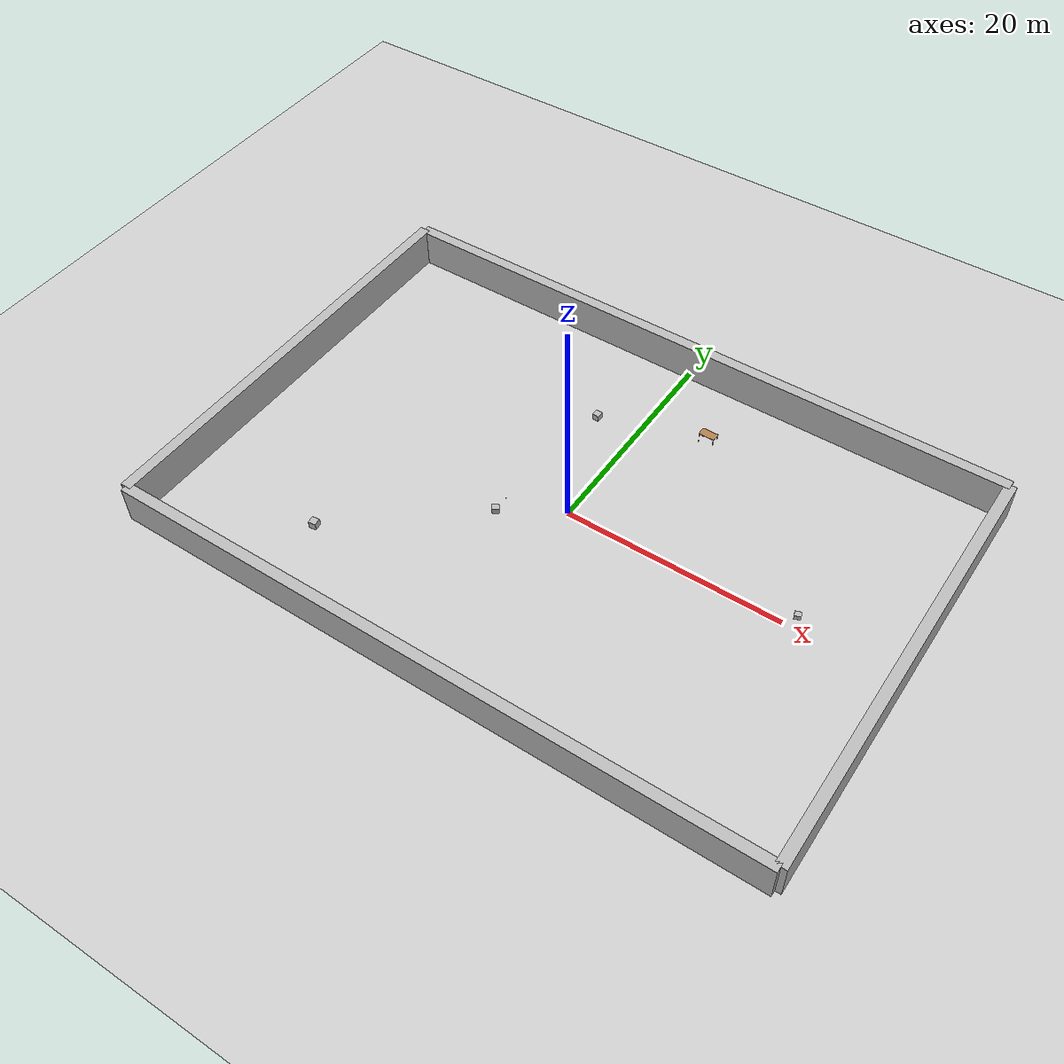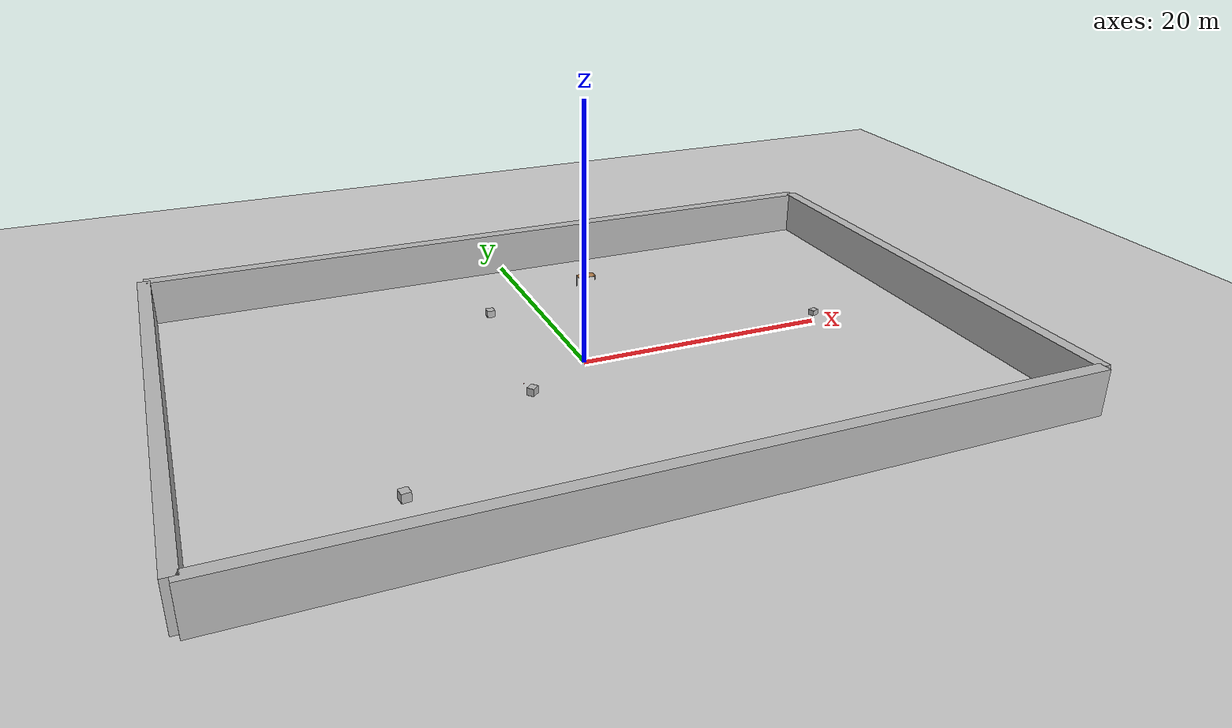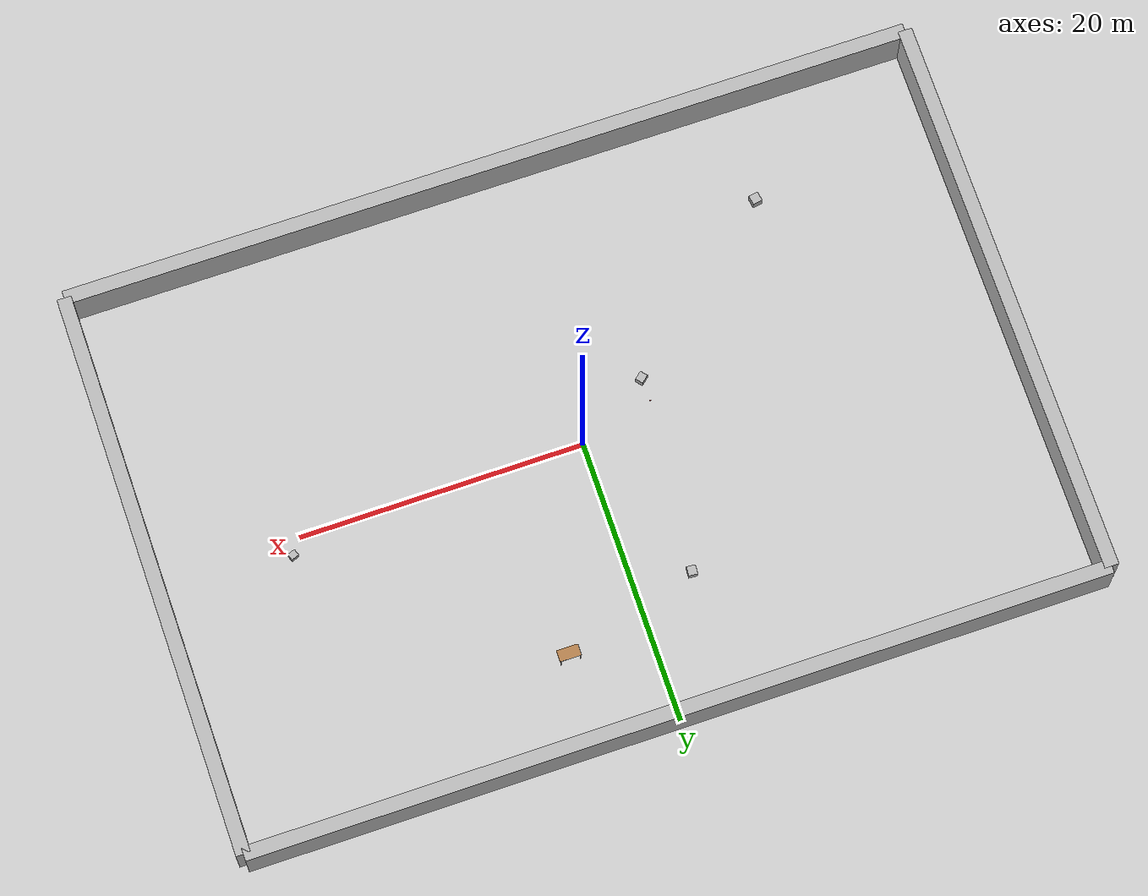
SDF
<sdf version="1.7">
 <world name="default">
  <gravity>0 0 -9.8</gravity>
  <physics name="default_physics" default="0" type="ode">
   <max_step_size>0.001</max_step_size>
   <real_time_factor>1</real_time_factor>
   <real_time_update_rate>1000</real_time_update_rate>
  </physics>
  <model name="ground_plane">
   <link name="link">
    <collision name="collision">
     <geometry><plane><normal>0 0 1</normal><size>60 40</size></plane></geometry>
     <surface><friction><ode><mu>0.8</mu><mu2>0.8</mu2></ode></friction></surface>
    </collision>
    <visual name="visual"><geometry><plane><normal>0 0 1</normal><size>60 40</size></plane></geometry></visual>
   </link>
   <static>1</static>
  </model>
  <model name="wall_left">
   <pose>-30 0 1 0 -0 0</pose>
   <link name="link">
    <collision name="collision">
     <geometry><box><size>1 40 5</size></box></geometry>
     <surface><friction><ode><mu>0.8</mu><mu2>0.8</mu2></ode></friction></surface>
    </collision>
    <visual name="visual"><geometry><box><size>1 40 5</size></box></geometry></visual>
   </link>
   <static>1</static>
  </model>
  <model name="wall_right">
   <pose>30 0 1 0 -0 0</pose>
   <link name="link">
    <collision name="collision">
     <geometry><box><size>1 40 5</size></box></geometry>
     <surface><friction><ode><mu>0.8</mu><mu2>0.8</mu2></ode></friction></surface>
    </collision>
    <visual name="visual"><geometry><box><size>1 40 5</size></box></geometry></visual>
   </link>
   <static>1</static>
  </model>
  <model name="wall_front">
   <pose>0 -20 1 0 -0 0</pose>
   <link name="link">
    <collision name="collision">
     <geometry><box><size>60 1 5</size></box></geometry>
     <surface><friction><ode><mu>0.8</mu><mu2>0.8</mu2></ode></friction></surface>
    </collision>
    <visual name="visual"><geometry><box><size>60 1 5</size></box></geometry></visual>
   </link>
   <static>1</static>
  </model>
  <model name="wall_back">
   <pose>0 20 1 0 -0 0</pose>
   <link name="link">
    <collision name="collision">
     <geometry><box><size>60 1 5</size></box></geometry>
     <surface><friction><ode><mu>0.8</mu><mu2>0.8</mu2></ode></friction></surface>
    </collision>
    <visual name="visual"><geometry><box><size>60 1 5</size></box></geometry></visual>
   </link>
   <static>1</static>
  </model>
  <light name="Warehouse_CeilingLight_003" type="point">
   <pose>0 0 9 0 -0 0</pose>
   <diffuse>0.5 0.5 0.5 1</diffuse>
   <specular>0.2 0.2 0.2 1</specular>
   <attenuation>
    <range>80</range>
    <constant>0.3</constant>
    <linear>0.01</linear>
    <quadratic>0.001</quadratic>
   </attenuation>
   <direction>0.1 0.1 -1</direction>
   <spot><inner_angle>0</inner_angle><outer_angle>0</outer_angle><falloff>0</falloff></spot>
  </light>
  <magnetic_field>6e-06 2.3e-05 -4.2e-05</magnetic_field>
  <atmosphere type="adiabatic"/>
  <scene><ambient>0.4 0.4 0.4 1</ambient><background>0.7 0.7 0.7 1</background><shadows>1</shadows></scene>
  <audio><device>default</device></audio>
  <spherical_coordinates>
   <surface_model>EARTH_WGS84</surface_model>
   <latitude_deg>0</latitude_deg>
   <longitude_deg>0</longitude_deg>
   <elevation>0</elevation>
   <heading_deg>0</heading_deg>
  </spherical_coordinates>
  <model name="DynamicObstacle">
   <pose>20.7796 1.0866 0.219729 0 0 -1.22665</pose>
   <link name="link">
    <inertial>
     <inertia><ixx>0.17</ixx><ixy>0</ixy><ixz>0</ixz><iyy>0.17</iyy><iyz>0</iyz><izz>0.17</izz></inertia>
     <mass>100</mass>
    </inertial>
    <collision name="collision">
     <max_contacts>0</max_contacts>
     <geometry><box><size>0.489915 0.575538 0.439458</size></box></geometry>
     <surface>
      <friction><ode><mu>0</mu><mu2>0</mu2></ode></friction>
      <bounce><restitution_coefficient>0</restitution_coefficient><threshold>0</threshold></bounce>
      <contact><ode><kp>2e+09</kp><kd>1</kd><max_vel>0.01</max_vel><min_depth>0</min_depth></ode></contact>
     </surface>
    </collision>
    <visual name="visual"><geometry><box><size>0.489915 0.575538 0.439458</size></box></geometry></visual>
   </link>
   <plugin name="random" filename="libRandomVelocityPlugin.so">
    <link>link</link>
    <initial_velocity>0 0.05 0</initial_velocity>
    <velocity_factor>0.2</velocity_factor>
    <update_period>5</update_period>
    <min_z>-5</min_z>
    <max_z>0</max_z>
   </plugin>
  </model>
  <model name="DynamicObstacle_0">
   <pose>-4.02773 10.677 0.283345 0 -0 1.51756</pose>
   <link name="link">
    <inertial>
     <inertia><ixx>0.17</ixx><ixy>0</ixy><ixz>0</ixz><iyy>0.17</iyy><iyz>0</iyz><izz>0.17</izz></inertia>
     <mass>100</mass>
    </inertial>
    <collision name="collision">
     <max_contacts>0</max_contacts>
     <geometry><box><size>0.66096 0.631461 0.566691</size></box></geometry>
     <surface>
      <friction><ode><mu>0</mu><mu2>0</mu2></ode></friction>
      <bounce><restitution_coefficient>0</restitution_coefficient><threshold>0</threshold></bounce>
      <contact><ode><kp>2e+09</kp><kd>1</kd><max_vel>0.01</max_vel><min_depth>0</min_depth></ode></contact>
     </surface>
    </collision>
    <visual name="visual"><geometry><box><size>0.66096 0.631461 0.566691</size></box></geometry></visual>
   </link>
   <plugin name="random" filename="libRandomVelocityPlugin.so">
    <link>link</link>
    <initial_velocity>0 0.05 0</initial_velocity>
    <velocity_factor>0.2</velocity_factor>
    <update_period>5</update_period>
    <min_z>-5</min_z>
    <max_z>0</max_z>
   </plugin>
  </model>
  <model name="DynamicObstacle_1">
   <pose>-5.21909 -3.13906 0.293232 -0 1e-06 -2.4231</pose>
   <link name="link">
    <inertial>
     <inertia><ixx>0.17</ixx><ixy>0</ixy><ixz>0</ixz><iyy>0.17</iyy><iyz>0</iyz><izz>0.17</izz></inertia>
     <mass>100</mass>
    </inertial>
    <collision name="collision">
     <max_contacts>0</max_contacts>
     <geometry><box><size>0.653022 0.568134 0.58647</size></box></geometry>
     <surface>
      <friction><ode><mu>0</mu><mu2>0</mu2></ode></friction>
      <bounce><restitution_coefficient>0</restitution_coefficient><threshold>0</threshold></bounce>
      <contact><ode><kp>2e+09</kp><kd>1</kd><max_vel>0.01</max_vel><min_depth>0</min_depth></ode></contact>
     </surface>
    </collision>
    <visual name="visual"><geometry><box><size>0.653022 0.568134 0.58647</size></box></geometry></visual>
   </link>
   <plugin name="random" filename="libRandomVelocityPlugin.so">
    <link>link</link>
    <initial_velocity>0 0.05 0</initial_velocity>
    <velocity_factor>0.2</velocity_factor>
    <update_period>5</update_period>
    <min_z>-5</min_z>
    <max_z>0</max_z>
   </plugin>
  </model>
  <model name="DynamicObstacle_2">
   <pose>-16.7301 -12.7078 0.338476 0 3e-06 1.70783</pose>
   <link name="link">
    <inertial>
     <inertia><ixx>0.17</ixx><ixy>0</ixy><ixz>0</ixz><iyy>0.17</iyy><iyz>0</iyz><izz>0.17</izz></inertia>
     <mass>100</mass>
    </inertial>
    <collision name="collision">
     <max_contacts>0</max_contacts>
     <geometry><box><size>0.680535 0.677727 0.676956</size></box></geometry>
     <surface>
      <friction><ode><mu>0</mu><mu2>0</mu2></ode></friction>
      <bounce><restitution_coefficient>0</restitution_coefficient><threshold>0</threshold></bounce>
      <contact><ode><kp>2e+09</kp><kd>1</kd><max_vel>0.01</max_vel><min_depth>0</min_depth></ode></contact>
     </surface>
    </collision>
    <visual name="visual"><geometry><box><size>0.680535 0.677727 0.676956</size></box></geometry></visual>
   </link>
   <plugin name="random" filename="libRandomVelocityPlugin.so">
    <link>link</link>
    <initial_velocity>0 0.05 0</initial_velocity>
    <velocity_factor>0.2</velocity_factor>
    <update_period>5</update_period>
    <min_z>-5</min_z>
    <max_z>0</max_z>
   </plugin>
  </model>
  <model name="cricket_ball">
   <link name="link">
    <pose>0 0 0.0375 0 -0 0</pose>
    <inertial>
     <mass>0.1467</mass>
     <inertia>
      <ixx>8.25187e-05</ixx>
      <ixy>0</ixy>
      <ixz>0</ixz>
      <iyy>8.25187e-05</iyy>
      <iyz>0</iyz>
      <izz>8.25187e-05</izz>
     </inertia>
    </inertial>
    <collision name="collision">
     <geometry><sphere><radius>0.0375</radius></sphere></geometry>
     <surface>
      <contact>
       <poissons_ratio>0.347</poissons_ratio>
       <elastic_modulus>8.8e+09</elastic_modulus>
       <ode><kp>100000</kp><kd>100</kd><max_vel>100</max_vel><min_depth>0.001</min_depth></ode>
      </contact>
      <friction>
       <torsional>
        <coefficient>1</coefficient>
        <use_patch_radius>0</use_patch_radius>
        <surface_radius>0.01</surface_radius>
       </torsional>
      </friction>
     </surface>
    </collision>
    <visual name="visual">
     <geometry><sphere><radius>0.0375</radius></sphere></geometry>
     <material>
      <script><uri>file://media/materials/scripts/gazebo.material</uri><name>Gazebo/Red</name></script>
     </material>
    </visual>
    <velocity_decay><linear>0</linear><angular>0.005</angular></velocity_decay>
   </link>
   <pose>0.014506 3.96082 -0.001014 0 -0 0</pose>
  </model>
  <model name="cricket_ball_0">
   <link name="link">
    <pose>0 0 0.0375 0 -0 0</pose>
    <inertial>
     <mass>0.1467</mass>
     <inertia>
      <ixx>8.25187e-05</ixx>
      <ixy>0</ixy>
      <ixz>0</ixz>
      <iyy>8.25187e-05</iyy>
      <iyz>0</iyz>
      <izz>8.25187e-05</izz>
     </inertia>
    </inertial>
    <collision name="collision">
     <geometry><sphere><radius>0.0375</radius></sphere></geometry>
     <surface>
      <contact>
       <poissons_ratio>0.347</poissons_ratio>
       <elastic_modulus>8.8e+09</elastic_modulus>
       <ode><kp>100000</kp><kd>100</kd><max_vel>100</max_vel><min_depth>0.001</min_depth></ode>
      </contact>
      <friction>
       <torsional>
        <coefficient>1</coefficient>
        <use_patch_radius>0</use_patch_radius>
        <surface_radius>0.01</surface_radius>
       </torsional>
      </friction>
     </surface>
    </collision>
    <visual name="visual">
     <geometry><sphere><radius>0.0375</radius></sphere></geometry>
     <material>
      <script><uri>file://media/materials/scripts/gazebo.material</uri><name>Gazebo/Red</name></script>
     </material>
    </visual>
    <velocity_decay><linear>0</linear><angular>0.005</angular></velocity_decay>
   </link>
   <pose>-5.28442 -1.52403 0.007864 0.663749 0.249783 -1.42957</pose>
  </model>
  <model name="table">
   <static>1</static>
   <link name="link">
    <collision name="surface">
     <pose>0 0 1 0 -0 0</pose>
     <geometry><box><size>1.5 0.8 0.03</size></box></geometry>
     <surface><friction><ode><mu>0.6</mu><mu2>0.6</mu2></ode></friction></surface>
    </collision>
    <visual name="visual1">
     <pose>0 0 1 0 -0 0</pose>
     <geometry><box><size>1.5 0.8 0.03</size></box></geometry>
     <material>
      <script><uri>file://media/materials/scripts/gazebo.material</uri><name>Gazebo/Wood</name></script>
     </material>
    </visual>
    <collision name="front_left_leg">
     <pose>0.68 0.38 0.5 0 -0 0</pose>
     <geometry><cylinder><radius>0.02</radius><length>1</length></cylinder></geometry>
    </collision>
    <visual name="front_left_leg">
     <pose>0.68 0.38 0.5 0 -0 0</pose>
     <geometry><cylinder><radius>0.02</radius><length>1</length></cylinder></geometry>
     <material>
      <script><uri>file://media/materials/scripts/gazebo.material</uri><name>Gazebo/Grey</name></script>
     </material>
    </visual>
    <collision name="front_right_leg">
     <pose>0.68 -0.38 0.5 0 -0 0</pose>
     <geometry><cylinder><radius>0.02</radius><length>1</length></cylinder></geometry>
    </collision>
    <visual name="front_right_leg">
     <pose>0.68 -0.38 0.5 0 -0 0</pose>
     <geometry><cylinder><radius>0.02</radius><length>1</length></cylinder></geometry>
     <material>
      <script><uri>file://media/materials/scripts/gazebo.material</uri><name>Gazebo/Grey</name></script>
     </material>
    </visual>
    <collision name="back_right_leg">
     <pose>-0.68 -0.38 0.5 0 -0 0</pose>
     <geometry><cylinder><radius>0.02</radius><length>1</length></cylinder></geometry>
    </collision>
    <visual name="back_right_leg">
     <pose>-0.68 -0.38 0.5 0 -0 0</pose>
     <geometry><cylinder><radius>0.02</radius><length>1</length></cylinder></geometry>
     <material>
      <script><uri>file://media/materials/scripts/gazebo.material</uri><name>Gazebo/Grey</name></script>
     </material>
    </visual>
    <collision name="back_left_leg">
     <pose>-0.68 0.38 0.5 0 -0 0</pose>
     <geometry><cylinder><radius>0.02</radius><length>1</length></cylinder></geometry>
    </collision>
    <visual name="back_left_leg">
     <pose>-0.68 0.38 0.5 0 -0 0</pose>
     <geometry><cylinder><radius>0.02</radius><length>1</length></cylinder></geometry>
     <material>
      <script><uri>file://media/materials/scripts/gazebo.material</uri><name>Gazebo/Grey</name></script>
     </material>
    </visual>
   </link>
   <pose>5.57914 13.5085 0 0 -0 0</pose>
  </model>
 </world>
</sdf>
